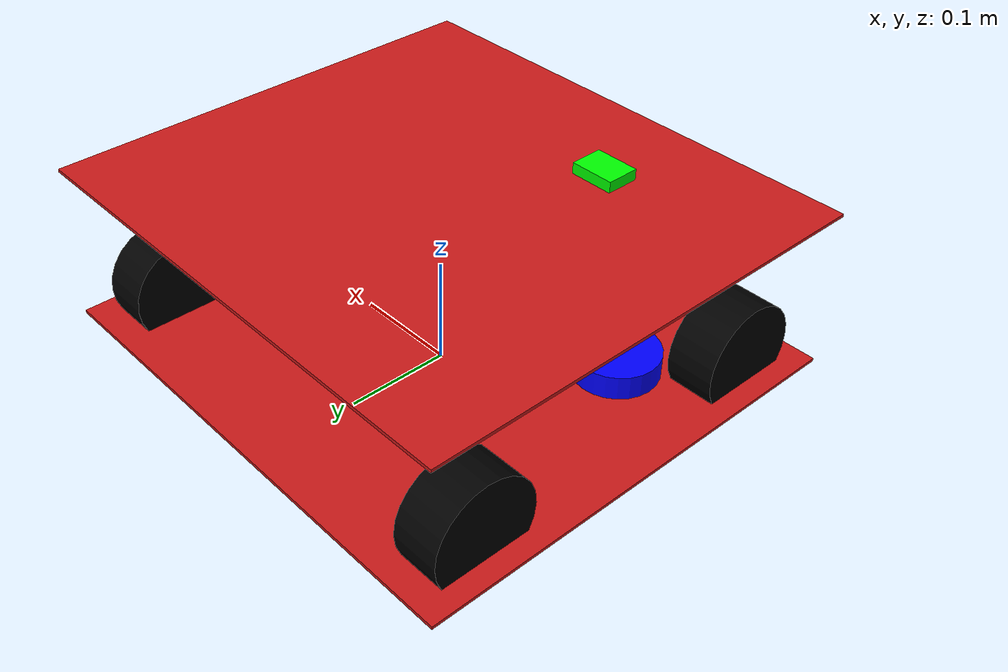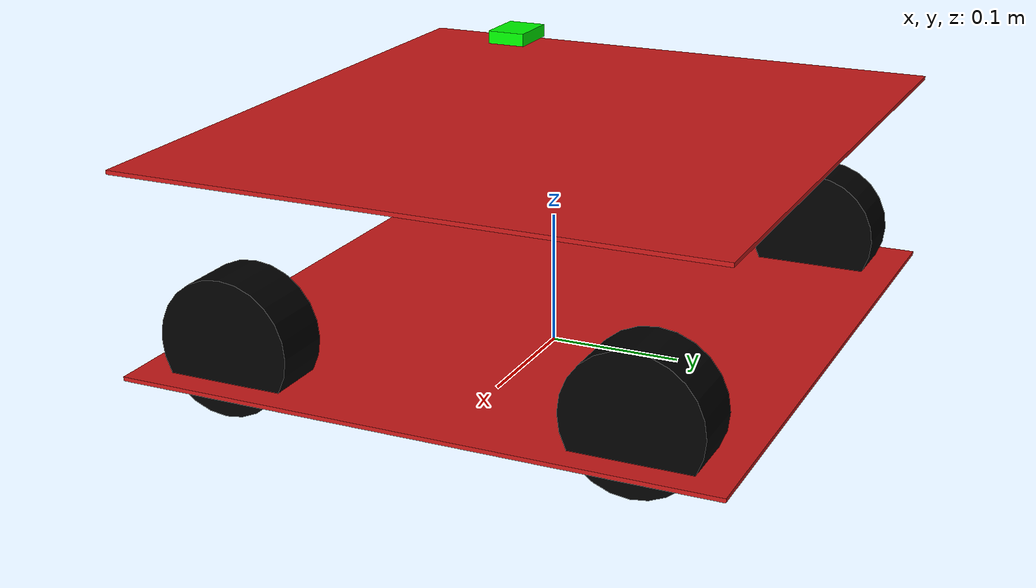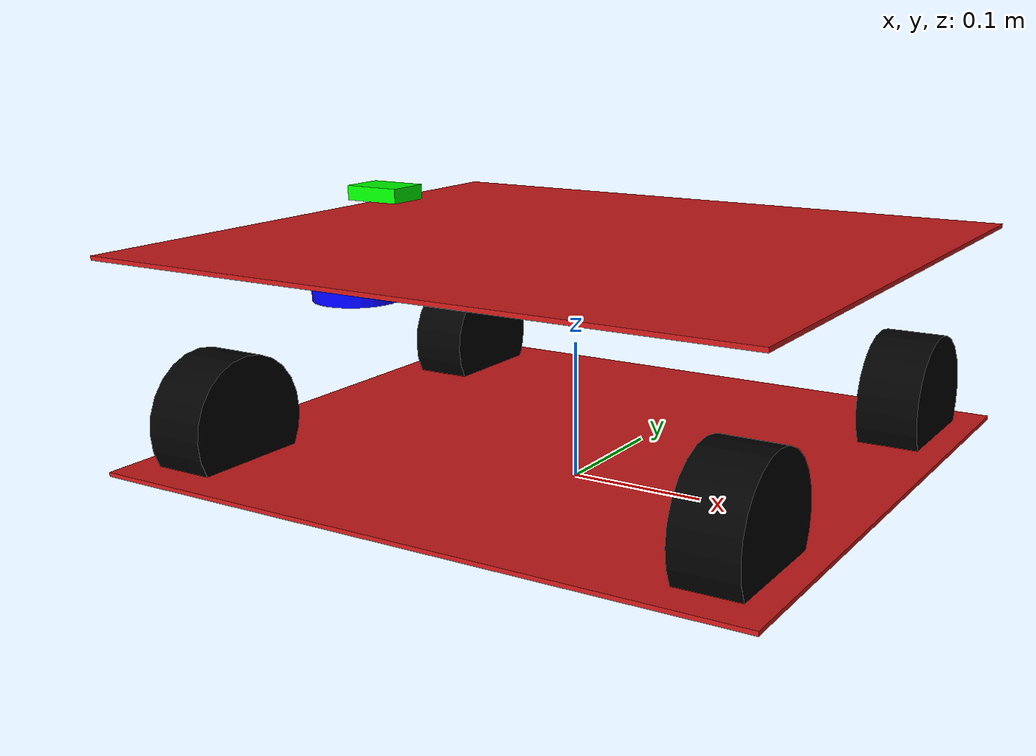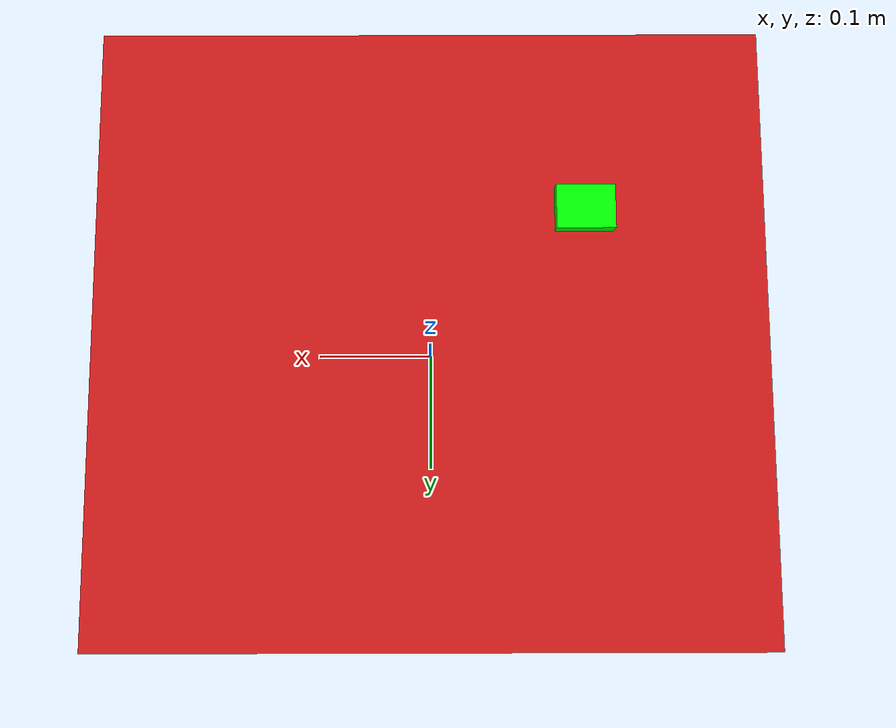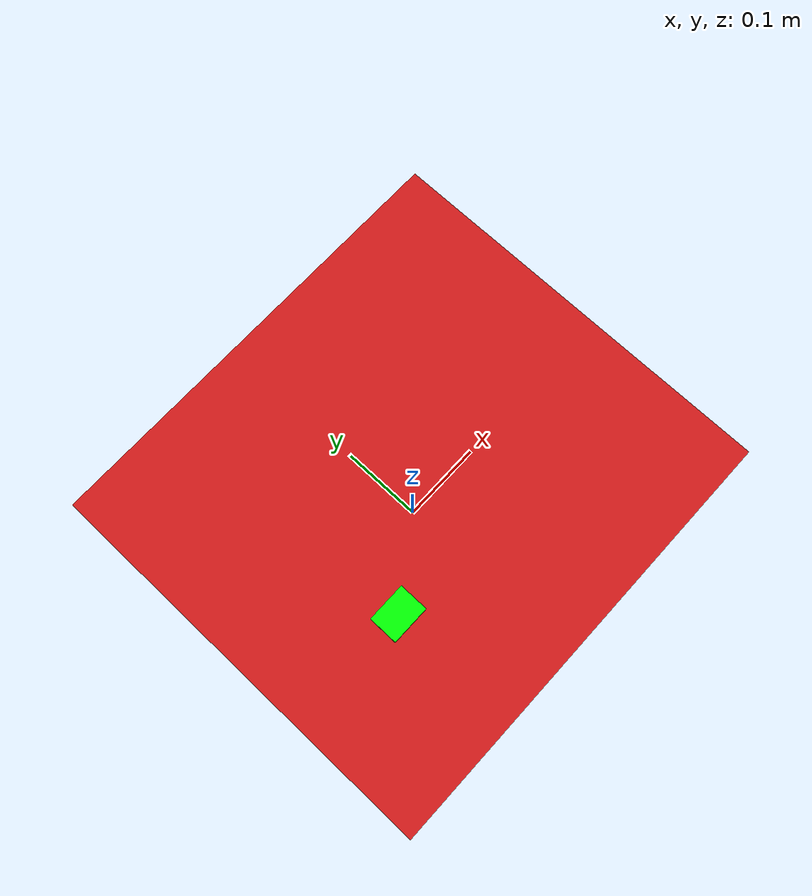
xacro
<?xml version="1.0"?>
<robot name="final_urdf" xmlns:xacro="http://ros.org/wiki/xacro">

  <!-- === quick-tweak params === -->
  <xacro:property name="base_len"      value="0.480"/>  <!-- 480 mm -->
  <xacro:property name="base_wid"      value="0.440"/>  <!-- 420 mm -->
  <xacro:property name="plate_gap"     value="0.150"/>  <!-- distance between bottom and middle plate - 15 cm -->
  <xacro:property name="extrusion"     value="0.020"/>  <!-- 20 mm -->
  <xacro:property name="base_thk"      value="0.003"/>  <!-- THICK plates: 3 mm -->
  <xacro:property name="wheel_radius"  value="0.050"/>  <!-- 50 mm radius -->
  <xacro:property name="wheel_width"   value="0.045"/>  <!-- X2 choice: 35 mm width -->

  <!-- Lift body so it’s clearly visible & above wheels -->
  <xacro:property name="clearance"     value="0.002"/>  <!-- 2 mm visual clearance -->
  <xacro:property name="gnd_clearence" value="0.020"/>  <!-- 20 mm visual clearance -->
  <xacro:property name="base_offset_z" value="${gnd_clearence + base_thk/2 + clearance}"/>
  <xacro:property name="upper_plate_z" value="${base_offset_z + plate_gap}"/>

  <!-- Wheel center height (touching ground at z=0) -->
  <xacro:property name="wheel_z"       value="${wheel_radius}"/>

  <!-- Sensors (heights relative to base_link origin) -->
  <xacro:property name="bno_z"         value="0.210"/>
  <xacro:property name="bno_x"         value="-0.105"/>
  <xacro:property name="bno_y"         value="-0.080"/>
  <xacro:property name="lidar_z"       value="0.120"/>
  <xacro:property name="lidar_off_x"   value="-0.200"/>

  <!-- === base link: two chunky plates === -->
  <link name="base_link">
    <visual>
      <origin xyz="0 0 ${base_offset_z}" rpy="0 0 0"/>
      <geometry>
        <box size="${base_len} ${base_wid} ${base_thk}"/>
      </geometry>
      <material name="red"><color rgba="0.8 0.1 0.1 1.0"/></material>
    </visual>
    <visual>
      <origin xyz="0 0 ${upper_plate_z}" rpy="0 0 0"/>
      <geometry>
        <box size="${base_len} ${base_wid} ${base_thk}"/>
      </geometry>
      <material name="red"><color rgba="0.8 0.1 0.1 1.0"/></material>
    </visual>

    <!-- simple inertial just to be sane; tweak later if you simulate dynamics -->
    <inertial>
      <origin xyz="0 0 ${(base_offset_z + upper_plate_z)/2}" rpy="0 0 0"/>
      <mass value="15.0"/>
      <inertia ixx="0.4" ixy="0.0" ixz="0.0"
               iyy="0.5" iyz="0.0"
               izz="0.6"/>
    </inertial>
  </link>

  <link name="base_footprint"/>

  <!-- === omni wheel macro (BLACK) === -->
  <xacro:macro name="omni_wheel_v1" params="name">
    <link name="${name}">
      <visual>
        <origin xyz="0 0 0" rpy="0  1.57079632679 0"/>
        <geometry>
          <cylinder radius="${wheel_radius}" length="${wheel_width}"/>
        </geometry>
        <material name="black"><color rgba="0.0 0.0 0.0 1.0"/></material>
      </visual>

      <collision>
        <origin xyz="0 0 0" rpy="0  1.57079632679 0"/>
        <geometry>
          <cylinder radius="${wheel_radius}" length="${wheel_width}"/>
        </geometry>
      </collision>

      <inertial>
        <mass value="0.7"/>
        <inertia ixx="0.001" ixy="0.0" ixz="0.0"
                 iyy="0.001" iyz="0.0"
                 izz="0.0006"/>
      </inertial>
    </link>
  </xacro:macro>

  <xacro:macro name="omni_wheel_v2" params="name">
    <link name="${name}">
      <visual>
        <origin xyz="0 0 0" rpy="0  1.57079632679 0"/>
        <geometry>
          <cylinder radius="${wheel_radius}" length="${wheel_width}"/>
        </geometry>
        <material name="black"><color rgba="0.0 0.0 0.0 1.0"/></material>
      </visual>

      <collision>
        <origin xyz="0 0 0" rpy="0  1.57079632679 0"/>
        <geometry>
          <cylinder radius="${wheel_radius}" length="${wheel_width}"/>
        </geometry>
      </collision>

      <inertial>
        <mass value="0.7"/>
        <inertia ixx="0.001" ixy="0.0" ixz="0.0"
                 iyy="0.001" iyz="0.0"
                 izz="0.0006"/>
      </inertial>
    </link>
  </xacro:macro>

  <!-- Create wheels -->
  <xacro:omni_wheel_v2 name="wheel_fl"/>
  <xacro:omni_wheel_v1 name="wheel_fr"/>
  <xacro:omni_wheel_v1 name="wheel_rl"/>
  <xacro:omni_wheel_v2 name="wheel_rr"/>

  <!-- === wheel joints (KIWI orientation: axle at ±45° in XY) === -->
  <!-- ( +x forward, +y left ) -->
  <joint name="wheel_fl_joint" type="continuous">
    <parent link="base_link"/>
    <child  link="wheel_fl"/>
    <origin xyz="${ base_len/2 - wheel_width/2 - extrusion } ${ base_wid/2 - wheel_radius -extrusion } ${wheel_z}" rpy="0 0 0"/>
    <axis xyz="1  0  0"/>
  </joint>

  <joint name="wheel_fr_joint" type="continuous">
    <parent link="base_link"/>
    <child  link="wheel_fr"/>
    <origin xyz="${ base_len/2 - wheel_width/2 -extrusion } ${ -base_wid/2 + wheel_radius + extrusion} ${wheel_z}" rpy="0 0 0"/>
    <axis xyz="1  0  0"/>
  </joint>

  <joint name="wheel_rl_joint" type="continuous">
    <parent link="base_link"/>
    <child  link="wheel_rl"/>
    <origin xyz="${ -base_len/2 + wheel_width/2 + extrusion } ${ base_wid/2 - wheel_radius - extrusion } ${wheel_z}" rpy="0 0 0"/>
    <axis xyz="1  0  0"/>
  </joint>

  <joint name="wheel_rr_joint" type="continuous">
    <parent link="base_link"/>
    <child  link="wheel_rr"/>
    <origin xyz="${ -base_len/2 + wheel_width/2 + extrusion } ${ -base_wid/2 + wheel_radius + extrusion } ${wheel_z}" rpy="0 0 0"/>
    <axis xyz="1  0  0"/>
  </joint>

  <!-- === BNO (GREEN, centered) === -->
  <link name="bno_link">
    <visual>
      <origin xyz="0 0 0" rpy="0 0 0"/>
      <geometry>
        <box size="0.040 0.030 0.010"/>
      </geometry>
      <material name="green"><color rgba="0.0 1.0 0.0 1.0"/></material>
    </visual>
  </link>

  <joint name="bno_fixed" type="fixed">
    <parent link="base_link"/>
    <child  link="bno_link"/>
    <origin xyz="${bno_x} ${bno_y} ${bno_z}" rpy="0 0 0"/>
  </joint>
  <joint name="base_footprint_joint" type="fixed">
    <parent link="base_link"/>
    <child link="base_footprint"/>
    <origin xyz="0 0 0" rpy="0 0 0"/>
  </joint>

  <!-- === LiDAR (BLUE, 130mm forward, spinning) === -->
  <link name="lidar_link">
    <visual>
      <origin xyz="0 0 0" rpy="0 0 0"/>
      <geometry>
        <cylinder radius="0.035" length="0.020"/> <!-- slightly taller for visibility -->
      </geometry>
      <material name="blue"><color rgba="0.0 0.0 1.0 1.0"/></material>
    </visual>
  </link>

  <joint name="lidar_yaw" type="continuous">
    <parent link="base_link"/>
    <child  link="lidar_link"/>
    <origin xyz="${lidar_off_x} 0 ${lidar_z}" rpy="0 0 1.5708"/>
    <axis xyz="0 0 1"/>
  </joint>

</robot>
